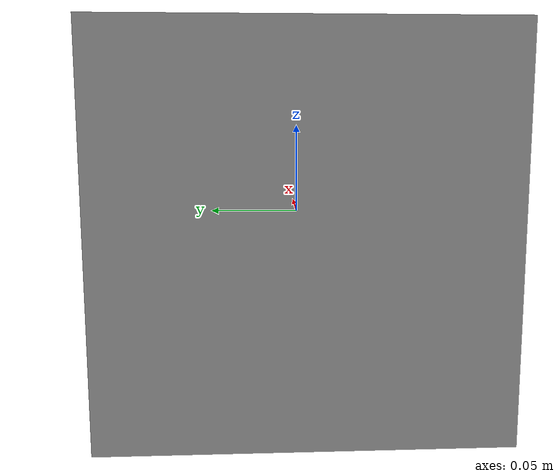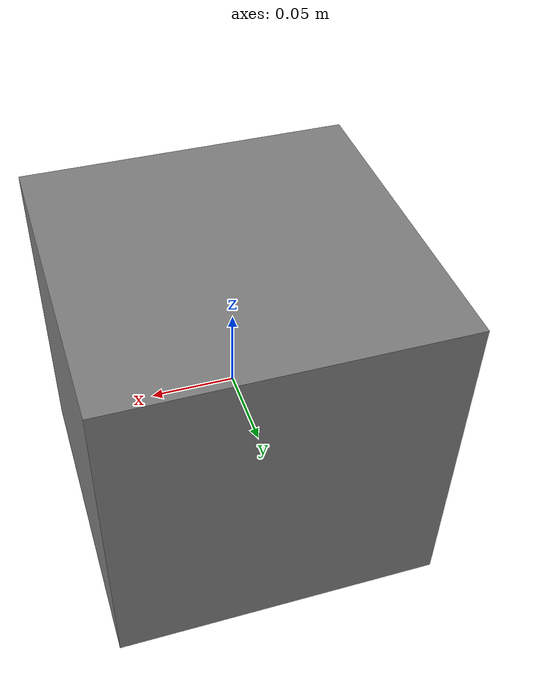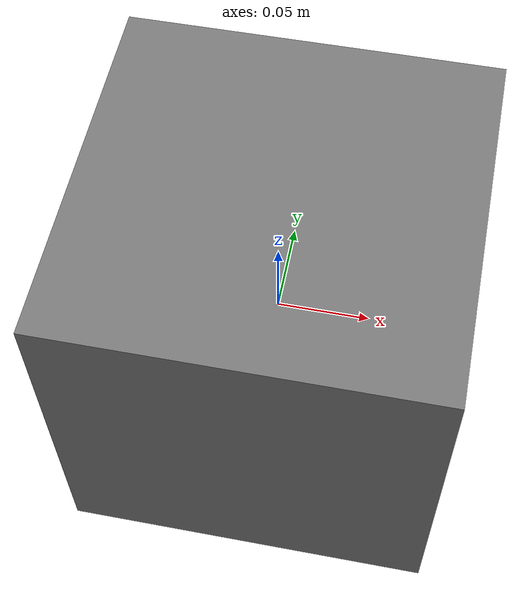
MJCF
<mujoco model="defaults_contact_sensor"><default><joint damping="0.2" armature="0.01"/><geom friction="0.8 0.01 0.001" condim="3"/></default><option timestep="0.005" gravity="0 0 -9.81"/><worldbody><body name="base"><freejoint/><geom type="box" size="0.1 0.1 0.1" mass="1"/><site name="imu_site" pos="0 0 0.05" size="0.01"/></body></worldbody><sensor><framequat name="orientation" objtype="site" objname="imu_site"/><gyro name="angular_velocity" site="imu_site"/></sensor></mujoco>
